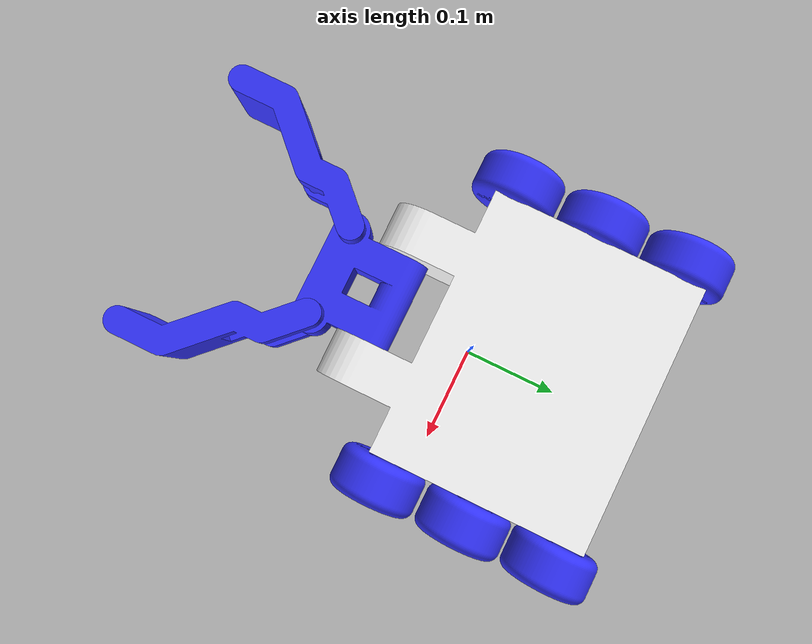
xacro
<?xml version="1.0"?>
<robot xmlns:xacro="http://www.ros.org/wiki/xacro" >

    <xacro:include filename="inertial_macros.xacro" />
    <material name="white">
        <color rgba="1 1 1 1" />
    </material>

    <material name="orange">
        <color rgba="1 0.3 0.1 1"/>
    </material>

    <material name="blue">
        <color rgba="0.2 0.2 1 1"/>
    </material>

    <material name="black">
        <color rgba="0 0 0 1"/>
    </material>

    <material name="red">
        <color rgba="1 0 0 1"/>
    </material>

<!-- BASE LINK -->

    <link name="base_link">

    </link>

    <link name="chassis">
        <visual>
            <origin xyz="-0.011763 0.072599 0" rpy="0 0 0"/>
            <geometry>
                <mesh filename="file://$(find articubot_one)/description/cartood.dae" scale="1 1 1"/>
            </geometry>
            <material name="white"/>
        </visual>
        <collision>
            <origin xyz="-0.011763 0.072599 0" rpy="0 0 0"/>
            <geometry>
                <mesh filename="file://$(find articubot_one)/description/cartood.dae" scale="1 1 1"/>
            </geometry>
        </collision>
        <xacro:inertial_box mass="600" x="0" y="0" z="0">
            <origin xyz="0 0 0" rpy="0 0 0"/>
        </xacro:inertial_box>
    </link>
    <gazebo reference="chassis">
        <material>Gazebo/Orange</material>
    </gazebo>

    <joint name="chassis_joint" type="fixed">
        <parent link="base_link"/>
        <child link="chassis"/>
        <origin xyz="0 0 0"/>
    </joint>

<!-- BASE_FOOTPRINT LINK -->

    <joint name="base_footprint_joint" type="fixed">
        <parent link="base_link"/>
        <child link="base_footprint"/>
        <origin xyz="0 0 0" rpy="0 0 0"/>
    </joint>

    <link name="base_footprint">
    </link>

<!-- LEFT MIDDLE WHEEL -->

    <joint name="left_middle_wheel_joint" type="continuous">
        <parent link="base_link"/>
        <child link="left_middle_wheel"/>
        <origin xyz="0.162737 0.072599 0" rpy="0 0 0"/>
        <axis xyz="1 0 0"/>
    </joint>
    <link name="left_middle_wheel">
        <visual>
            <geometry>
                <mesh filename="file://$(find articubot_one)/description/wheeltood.dae" scale="1 1 1"/>
            </geometry>
            <material name="blue"/>
        </visual>
        <collision>
            <geometry>
                <mesh filename="file://$(find articubot_one)/description/wheeltood.dae" scale="1 1 1"/>
            </geometry>
        </collision>
        <xacro:inertial_cylinder mass="100" length="0.05" radius="0.05">
            <origin xyz="0 0 0" rpy="0 0 0"/>
        </xacro:inertial_cylinder>
    </link>
    <gazebo reference="left_middle_wheel">
        <material>Gazebo/Blue</material>
    </gazebo>

<!--LEFT BACK WHEEL-->

    <joint name="left_back_wheel_joint" type="continuous">
        <parent link="base_link"/>
        <child link="left_back_wheel"/>
        <origin xyz="0.162737 0.172599 0" rpy="0 0 0"/>
        <axis xyz="1 0 0"/>
    </joint>
    <link name="left_back_wheel">
        <visual>
            <geometry>
                <mesh filename="file://$(find articubot_one)/description/wheeltood.dae" scale="1 1 1"/>
            </geometry>
            <material name="blue"/>
        </visual>
        <collision>
            <geometry>
                <mesh filename="file://$(find articubot_one)/description/wheeltood.dae" scale="1 1 1"/>
            </geometry>
        </collision>
        <xacro:inertial_cylinder mass="100" length="0.05" radius="0.05">
            <origin xyz="0 0 0" rpy="0 0 0"/>
        </xacro:inertial_cylinder>
    </link>
    <gazebo reference="left_back_wheel">
        <material>Gazebo/Blue</material>
        <mu1>0.8</mu1>
    </gazebo>

<!--LEFT FRONT WHEEL-->

    <joint name="left_front_wheel_joint" type="continuous">
        <parent link="base_link"/>
        <child link="left_front_wheel"/>
        <origin xyz="0.162737 -0.027401 0" rpy="0 0 0"/>
        <axis xyz="1 0 0"/>
    </joint>
    <link name="left_front_wheel">
        <visual>
            <geometry>
                <mesh filename="file://$(find articubot_one)/description/wheeltood.dae" scale="1 1 1"/>
            </geometry>
            <material name="blue"/>
        </visual>
        <collision>
            <geometry>
                <mesh filename="file://$(find articubot_one)/description/wheeltood.dae" scale="1 1 1"/>
            </geometry>
        </collision>
        <xacro:inertial_cylinder mass="100" length="0.05" radius="0.05">
            <origin xyz="0 0 0" rpy="0 0 0"/>
        </xacro:inertial_cylinder>
    </link>
    <gazebo reference="left_front_wheel">
        <material>Gazebo/Blue</material>
    </gazebo>

<!-- RIGHT MIDDLE WHEEL -->

    <joint name="right_middle_wheel_joint" type="continuous">
        <parent link="base_link"/>
        <child link="right_middle_wheel"/>
        <origin xyz="-0.186263 0.072599 0" rpy="0 0 0"/>
        <axis xyz="1 0 0"/>
    </joint>
    <link name="right_middle_wheel">
        <visual>
            <geometry>
                <mesh filename="file://$(find articubot_one)/description/wheeltood.dae" scale="1 1 1"/>
            </geometry>
            <material name="blue"/>
        </visual>
        <collision>
            <geometry>
                <mesh filename="file://$(find articubot_one)/description/wheeltood.dae" scale="1 1 1"/>
            </geometry>
        </collision>
        <xacro:inertial_cylinder mass="100" length="0.05" radius="0.05">
            <origin xyz="0 0 0" rpy="0 0 0"/>
        </xacro:inertial_cylinder>
    </link>
    <gazebo reference="right_middle_wheel">
        <material>Gazebo/Blue</material>
    </gazebo>

<!-- RIGHT BACK WHEEL -->

    <joint name="right_back_wheel_joint" type="continuous">
        <parent link="base_link"/>
        <child link="right_back_wheel"/>
        <origin xyz="-0.186263 0.172599 0" rpy="0 0 0"/>
        <axis xyz="1 0 0"/>
    </joint>
    <link name="right_back_wheel">
        <visual>
            <geometry>
                <mesh filename="file://$(find articubot_one)/description/wheeltood.dae" scale="1 1 1"/>
            </geometry>
            <material name="blue"/>
        </visual>
        <collision>
            <geometry>
                <mesh filename="file://$(find articubot_one)/description/wheeltood.dae" scale="1 1 1"/>
            </geometry>
        </collision>
        <xacro:inertial_cylinder mass="100" length="0.05" radius="0.05">
            <origin xyz="0 0 0" rpy="0 0 0"/>
        </xacro:inertial_cylinder>
    </link>
    <gazebo reference="right_back_wheel">
        <material>Gazebo/Blue</material>

    </gazebo>

<!-- RIGHT FRONT WHEEL -->

    <joint name="right_front_wheel_joint" type="continuous">
        <parent link="base_link"/>
        <child link="right_front_wheel"/>
        <origin xyz="-0.186263 -0.027401 0" rpy="0 0 0"/>
        <axis xyz="1 0 0"/>
    </joint>
    <link name="right_front_wheel">
        <visual>
            <geometry>
                <mesh filename="file://$(find articubot_one)/description/wheeltood.dae" scale="1 1 1"/>
            </geometry>
            <material name="blue"/>
        </visual>
        <collision>
            <geometry>
                <mesh filename="file://$(find articubot_one)/description/wheeltood.dae" scale="1 1 1"/>
            </geometry>
        </collision>
        <xacro:inertial_cylinder mass="100" length="0.05" radius="0.05">
            <origin xyz="0 0 0" rpy="0 0 0"/>
        </xacro:inertial_cylinder>
    </link>
    <gazebo reference="right_front_wheel">
        <material>Gazebo/Blue</material>
    </gazebo>

<!--ARM UP AND DOWN -->

    <joint name="arm_up_down_joint" type="revolute">
        <parent link="chassis"/>
        <child link="first_arm"/>
        <origin xyz="-0.011763 -0.097401 0" rpy="0 0 0"/>
        <axis xyz="-1 0 0"/>
        <limit lower="0.0" upper="0.785" velocity="1" effort="100" />
    </joint>

    <link name="first_arm">
        <visual>
            <geometry>
                <mesh filename="file://$(find articubot_one)/description/joint1.dae" scale="1 1 1"/>
            </geometry>
            <material name="blue"/>
        </visual>
        <collision>
            <geometry>
                <mesh filename="file://$(find articubot_one)/description/joint1.dae" scale="1 1 1"/>
            </geometry>
        </collision>
        <xacro:inertial_box mass="0.1" x="0" y="0" z="0">
            <origin xyz="0 0 0" rpy="0 0 0"/>
        </xacro:inertial_box>
    </link>
    <gazebo reference="first_arm">
        <material>Gazebo/Blue</material>
        <mu1>1.4</mu1>
    </gazebo>

<!--ARM LEFT -->

    <joint name="double_arm_left" type="revolute">
        <parent link="first_arm"/>
        <child link="left_arm"/>
        <origin xyz="0.05 -0.07 0" rpy="-3.05093 1.57079 1.66145"/>
        <axis xyz="1 0 0"/>
        <limit lower="-0.785" upper="0.67" velocity="1" effort="100" />
    </joint>
    <link name="left_arm">
        <visual>
            <geometry>
                <mesh filename="file://$(find articubot_one)/description/arm.dae" scale="1 1 1"/>
            </geometry>
            <material name="blue"/>
        </visual>
        <collision>
            <geometry>
                <mesh filename="file://$(find articubot_one)/description/arm.dae" scale="1 1 1"/>
            </geometry>
        </collision>
        <xacro:inertial_cylinder mass="0.1" length="0" radius="0">
            <origin xyz="0 0 0" rpy="0 0 0"/>
        </xacro:inertial_cylinder>
    </link>
    <gazebo reference="left_arm">
        <material>Gazebo/Blue</material>
    </gazebo>

<!--ARM RIGHT -->

    <joint name="double_arm_right" type="revolute">
        <parent link="first_arm"/>
        <child link="right_arm"/>
        <origin xyz="-0.05 -0.07 0" rpy="-3.05093 -1.57079 -1.66145"/>
        <axis xyz="1 0 0"/>
        <limit lower="-0.785" upper="0.67" velocity="1" effort="100" />
    </joint>
    <link name="right_arm">
        <visual>
            <geometry>
                <mesh filename="file://$(find articubot_one)/description/arm.dae" scale="1 1 1"/>
            </geometry>
            <material name="blue"/>
        </visual>
        <collision>
            <geometry>
                <mesh filename="file://$(find articubot_one)/description/arm.dae" scale="1 1 1"/>
            </geometry>
        </collision>
        <xacro:inertial_cylinder mass="0.1" length="0" radius="0">
            <origin xyz="0 0 0" rpy="0 0 0"/>
        </xacro:inertial_cylinder>
    </link>
    <gazebo reference="right_arm">
        <material>Gazebo/Blue</material>
    </gazebo>

</robot>
